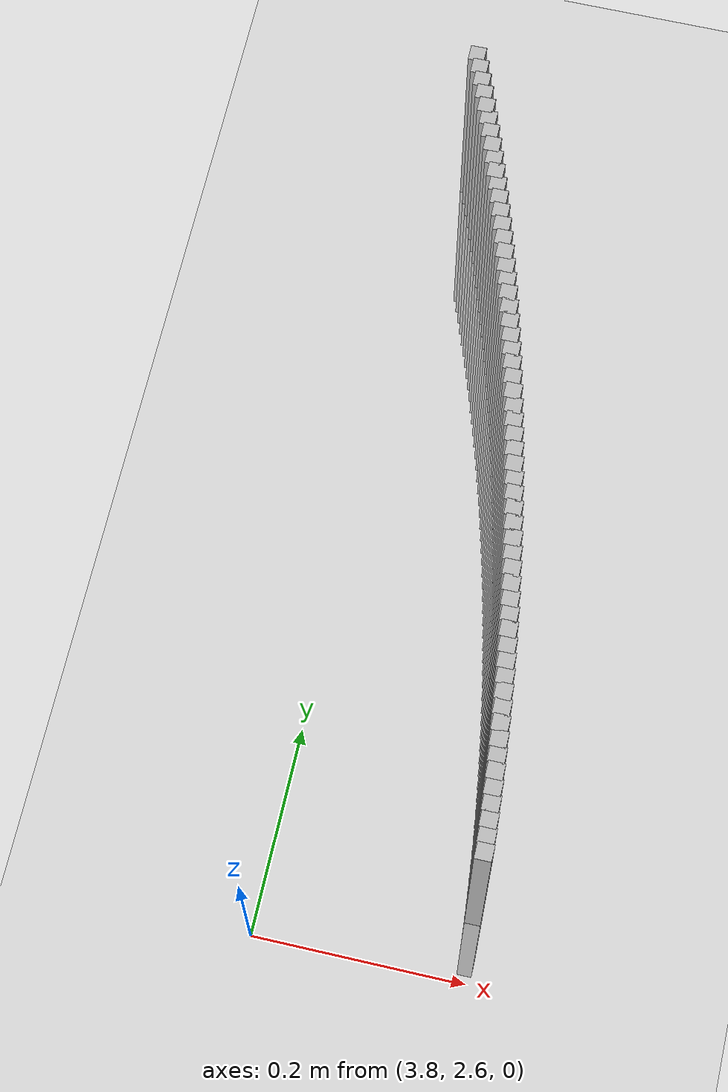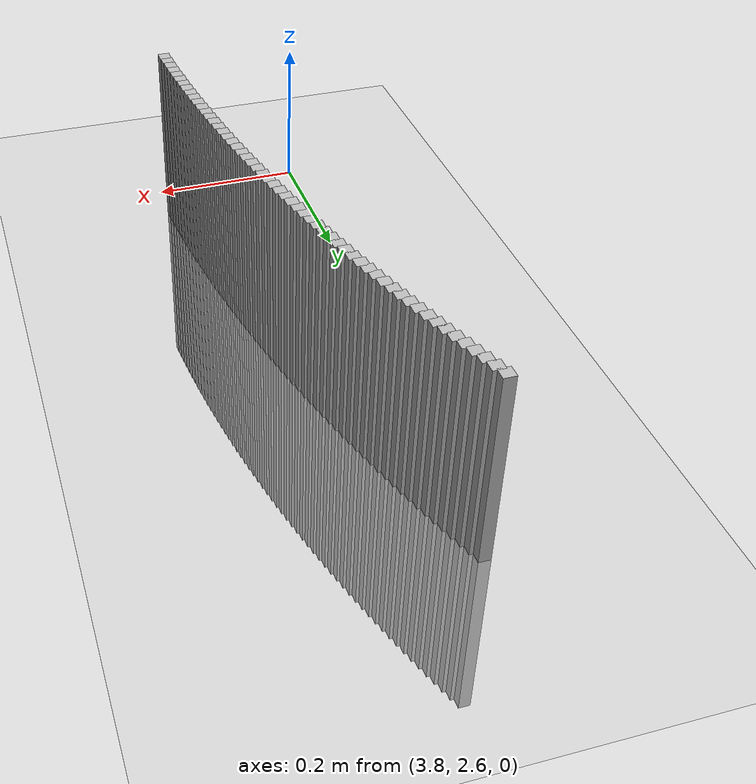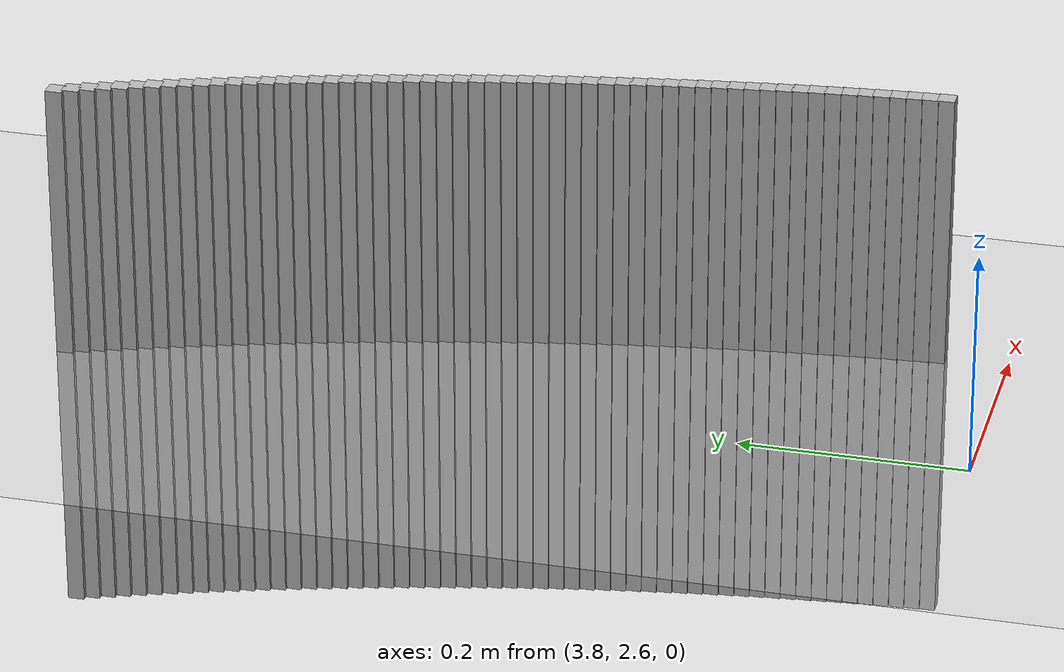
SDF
<sdf version="1.6">
 <world name="base">
  <model name="ground_plane">
   <static>1</static>
   <link name="link">
    <collision name="collision">
     <geometry><plane><normal>0 0 1</normal><size>100 100</size></plane></geometry>
     <surface>
      <contact><collide_bitmask>65535</collide_bitmask></contact>
      <friction><ode><mu>100</mu><mu2>50</mu2></ode></friction>
     </surface>
    </collision>
    <visual name="visual">
     <cast_shadows>0</cast_shadows>
     <geometry><plane><normal>0 0 1</normal><size>100 100</size></plane></geometry>
     <material>
      <script><uri>file://media/materials/scripts/gazebo.material</uri><name>Gazebo/Grey</name></script>
     </material>
    </visual>
   </link>
  </model>
  <model name="k404">
   <link name="224_link">
    <collision name="collision_224">
     <pose>3.8301 3.40589 0 0 -0 0</pose>
     <geometry><box><size>0.015 0.015 0.5</size></box></geometry>
    </collision>
    <visual name="visual_224">
     <pose>3.8301 3.40589 0 0 -0 0</pose>
     <geometry><box><size>0.015 0.015 0.5</size></box></geometry>
    </visual>
   </link>
   <link name="225_link">
    <collision name="collision_225">
     <pose>3.83509 3.39294 0 0 -0 0</pose>
     <geometry><box><size>0.015 0.015 0.5</size></box></geometry>
    </collision>
    <visual name="visual_225">
     <pose>3.83509 3.39294 0 0 -0 0</pose>
     <geometry><box><size>0.015 0.015 0.5</size></box></geometry>
    </visual>
   </link>
   <link name="226_link">
    <collision name="collision_226">
     <pose>3.84002 3.37995 0 0 -0 0</pose>
     <geometry><box><size>0.015 0.015 0.5</size></box></geometry>
    </collision>
    <visual name="visual_226">
     <pose>3.84002 3.37995 0 0 -0 0</pose>
     <geometry><box><size>0.015 0.015 0.5</size></box></geometry>
    </visual>
   </link>
   <link name="227_link">
    <collision name="collision_227">
     <pose>3.84487 3.36693 0 0 -0 0</pose>
     <geometry><box><size>0.015 0.015 0.5</size></box></geometry>
    </collision>
    <visual name="visual_227">
     <pose>3.84487 3.36693 0 0 -0 0</pose>
     <geometry><box><size>0.015 0.015 0.5</size></box></geometry>
    </visual>
   </link>
   <link name="228_link">
    <collision name="collision_228">
     <pose>3.84965 3.3539 0 0 -0 0</pose>
     <geometry><box><size>0.015 0.015 0.5</size></box></geometry>
    </collision>
    <visual name="visual_228">
     <pose>3.84965 3.3539 0 0 -0 0</pose>
     <geometry><box><size>0.015 0.015 0.5</size></box></geometry>
    </visual>
   </link>
   <link name="229_link">
    <collision name="collision_229">
     <pose>3.85436 3.34083 0 0 -0 0</pose>
     <geometry><box><size>0.015 0.015 0.5</size></box></geometry>
    </collision>
    <visual name="visual_229">
     <pose>3.85436 3.34083 0 0 -0 0</pose>
     <geometry><box><size>0.015 0.015 0.5</size></box></geometry>
    </visual>
   </link>
   <link name="230_link">
    <collision name="collision_230">
     <pose>3.85899 3.32774 0 0 -0 0</pose>
     <geometry><box><size>0.015 0.015 0.5</size></box></geometry>
    </collision>
    <visual name="visual_230">
     <pose>3.85899 3.32774 0 0 -0 0</pose>
     <geometry><box><size>0.015 0.015 0.5</size></box></geometry>
    </visual>
   </link>
   <link name="231_link">
    <collision name="collision_231">
     <pose>3.86356 3.31462 0 0 -0 0</pose>
     <geometry><box><size>0.015 0.015 0.5</size></box></geometry>
    </collision>
    <visual name="visual_231">
     <pose>3.86356 3.31462 0 0 -0 0</pose>
     <geometry><box><size>0.015 0.015 0.5</size></box></geometry>
    </visual>
   </link>
   <link name="232_link">
    <collision name="collision_232">
     <pose>3.86804 3.30147 0 0 -0 0</pose>
     <geometry><box><size>0.015 0.015 0.5</size></box></geometry>
    </collision>
    <visual name="visual_232">
     <pose>3.86804 3.30147 0 0 -0 0</pose>
     <geometry><box><size>0.015 0.015 0.5</size></box></geometry>
    </visual>
   </link>
   <link name="233_link">
    <collision name="collision_233">
     <pose>3.87246 3.28831 0 0 -0 0</pose>
     <geometry><box><size>0.015 0.015 0.5</size></box></geometry>
    </collision>
    <visual name="visual_233">
     <pose>3.87246 3.28831 0 0 -0 0</pose>
     <geometry><box><size>0.015 0.015 0.5</size></box></geometry>
    </visual>
   </link>
   <link name="234_link">
    <collision name="collision_234">
     <pose>3.8768 3.27511 0 0 -0 0</pose>
     <geometry><box><size>0.015 0.015 0.5</size></box></geometry>
    </collision>
    <visual name="visual_234">
     <pose>3.8768 3.27511 0 0 -0 0</pose>
     <geometry><box><size>0.015 0.015 0.5</size></box></geometry>
    </visual>
   </link>
   <link name="235_link">
    <collision name="collision_235">
     <pose>3.88107 3.2619 0 0 -0 0</pose>
     <geometry><box><size>0.015 0.015 0.5</size></box></geometry>
    </collision>
    <visual name="visual_235">
     <pose>3.88107 3.2619 0 0 -0 0</pose>
     <geometry><box><size>0.015 0.015 0.5</size></box></geometry>
    </visual>
   </link>
   <link name="236_link">
    <collision name="collision_236">
     <pose>3.88527 3.24866 0 0 -0 0</pose>
     <geometry><box><size>0.015 0.015 0.5</size></box></geometry>
    </collision>
    <visual name="visual_236">
     <pose>3.88527 3.24866 0 0 -0 0</pose>
     <geometry><box><size>0.015 0.015 0.5</size></box></geometry>
    </visual>
   </link>
   <link name="237_link">
    <collision name="collision_237">
     <pose>3.88939 3.23539 0 0 -0 0</pose>
     <geometry><box><size>0.015 0.015 0.5</size></box></geometry>
    </collision>
    <visual name="visual_237">
     <pose>3.88939 3.23539 0 0 -0 0</pose>
     <geometry><box><size>0.015 0.015 0.5</size></box></geometry>
    </visual>
   </link>
   <link name="238_link">
    <collision name="collision_238">
     <pose>3.89344 3.22211 0 0 -0 0</pose>
     <geometry><box><size>0.015 0.015 0.5</size></box></geometry>
    </collision>
    <visual name="visual_238">
     <pose>3.89344 3.22211 0 0 -0 0</pose>
     <geometry><box><size>0.015 0.015 0.5</size></box></geometry>
    </visual>
   </link>
   <link name="239_link">
    <collision name="collision_239">
     <pose>3.89742 3.2088 0 0 -0 0</pose>
     <geometry><box><size>0.015 0.015 0.5</size></box></geometry>
    </collision>
    <visual name="visual_239">
     <pose>3.89742 3.2088 0 0 -0 0</pose>
     <geometry><box><size>0.015 0.015 0.5</size></box></geometry>
    </visual>
   </link>
   <link name="240_link">
    <collision name="collision_240">
     <pose>3.90132 3.19547 0 0 -0 0</pose>
     <geometry><box><size>0.015 0.015 0.5</size></box></geometry>
    </collision>
    <visual name="visual_240">
     <pose>3.90132 3.19547 0 0 -0 0</pose>
     <geometry><box><size>0.015 0.015 0.5</size></box></geometry>
    </visual>
   </link>
   <link name="241_link">
    <collision name="collision_241">
     <pose>3.90514 3.18212 0 0 -0 0</pose>
     <geometry><box><size>0.015 0.015 0.5</size></box></geometry>
    </collision>
    <visual name="visual_241">
     <pose>3.90514 3.18212 0 0 -0 0</pose>
     <geometry><box><size>0.015 0.015 0.5</size></box></geometry>
    </visual>
   </link>
   <link name="242_link">
    <collision name="collision_242">
     <pose>3.90889 3.16875 0 0 -0 0</pose>
     <geometry><box><size>0.015 0.015 0.5</size></box></geometry>
    </collision>
    <visual name="visual_242">
     <pose>3.90889 3.16875 0 0 -0 0</pose>
     <geometry><box><size>0.015 0.015 0.5</size></box></geometry>
    </visual>
   </link>
   <link name="243_link">
    <collision name="collision_243">
     <pose>3.91257 3.15535 0 0 -0 0</pose>
     <geometry><box><size>0.015 0.015 0.5</size></box></geometry>
    </collision>
    <visual name="visual_243">
     <pose>3.91257 3.15535 0 0 -0 0</pose>
     <geometry><box><size>0.015 0.015 0.5</size></box></geometry>
    </visual>
   </link>
   <link name="244_link">
    <collision name="collision_244">
     <pose>3.91618 3.14194 0 0 -0 0</pose>
     <geometry><box><size>0.015 0.015 0.5</size></box></geometry>
    </collision>
    <visual name="visual_244">
     <pose>3.91618 3.14194 0 0 -0 0</pose>
     <geometry><box><size>0.015 0.015 0.5</size></box></geometry>
    </visual>
   </link>
   <link name="245_link">
    <collision name="collision_245">
     <pose>3.91971 3.12851 0 0 -0 0</pose>
     <geometry><box><size>0.015 0.015 0.5</size></box></geometry>
    </collision>
    <visual name="visual_245">
     <pose>3.91971 3.12851 0 0 -0 0</pose>
     <geometry><box><size>0.015 0.015 0.5</size></box></geometry>
    </visual>
   </link>
   <link name="246_link">
    <collision name="collision_246">
     <pose>3.92316 3.11505 0 0 -0 0</pose>
     <geometry><box><size>0.015 0.015 0.5</size></box></geometry>
    </collision>
    <visual name="visual_246">
     <pose>3.92316 3.11505 0 0 -0 0</pose>
     <geometry><box><size>0.015 0.015 0.5</size></box></geometry>
    </visual>
   </link>
   <link name="247_link">
    <collision name="collision_247">
     <pose>3.92654 3.10158 0 0 -0 0</pose>
     <geometry><box><size>0.015 0.015 0.5</size></box></geometry>
    </collision>
    <visual name="visual_247">
     <pose>3.92654 3.10158 0 0 -0 0</pose>
     <geometry><box><size>0.015 0.015 0.5</size></box></geometry>
    </visual>
   </link>
   <link name="248_link">
    <collision name="collision_248">
     <pose>3.92984 3.08809 0 0 -0 0</pose>
     <geometry><box><size>0.015 0.015 0.5</size></box></geometry>
    </collision>
    <visual name="visual_248">
     <pose>3.92984 3.08809 0 0 -0 0</pose>
     <geometry><box><size>0.015 0.015 0.5</size></box></geometry>
    </visual>
   </link>
   <link name="249_link">
    <collision name="collision_249">
     <pose>3.93307 3.07459 0 0 -0 0</pose>
     <geometry><box><size>0.015 0.015 0.5</size></box></geometry>
    </collision>
    <visual name="visual_249">
     <pose>3.93307 3.07459 0 0 -0 0</pose>
     <geometry><box><size>0.015 0.015 0.5</size></box></geometry>
    </visual>
   </link>
   <link name="250_link">
    <collision name="collision_250">
     <pose>3.93623 3.06106 0 0 -0 0</pose>
     <geometry><box><size>0.015 0.015 0.5</size></box></geometry>
    </collision>
    <visual name="visual_250">
     <pose>3.93623 3.06106 0 0 -0 0</pose>
     <geometry><box><size>0.015 0.015 0.5</size></box></geometry>
    </visual>
   </link>
   <link name="251_link">
    <collision name="collision_251">
     <pose>3.93931 3.04752 0 0 -0 0</pose>
     <geometry><box><size>0.015 0.015 0.5</size></box></geometry>
    </collision>
    <visual name="visual_251">
     <pose>3.93931 3.04752 0 0 -0 0</pose>
     <geometry><box><size>0.015 0.015 0.5</size></box></geometry>
    </visual>
   </link>
   <link name="252_link">
    <collision name="collision_252">
     <pose>3.94231 3.03396 0 0 -0 0</pose>
     <geometry><box><size>0.015 0.015 0.5</size></box></geometry>
    </collision>
    <visual name="visual_252">
     <pose>3.94231 3.03396 0 0 -0 0</pose>
     <geometry><box><size>0.015 0.015 0.5</size></box></geometry>
    </visual>
   </link>
   <link name="253_link">
    <collision name="collision_253">
     <pose>3.94524 3.02038 0 0 -0 0</pose>
     <geometry><box><size>0.015 0.015 0.5</size></box></geometry>
    </collision>
    <visual name="visual_253">
     <pose>3.94524 3.02038 0 0 -0 0</pose>
     <geometry><box><size>0.015 0.015 0.5</size></box></geometry>
    </visual>
   </link>
   <link name="254_link">
    <collision name="collision_254">
     <pose>3.94809 3.00679 0 0 -0 0</pose>
     <geometry><box><size>0.015 0.015 0.5</size></box></geometry>
    </collision>
    <visual name="visual_254">
     <pose>3.94809 3.00679 0 0 -0 0</pose>
     <geometry><box><size>0.015 0.015 0.5</size></box></geometry>
    </visual>
   </link>
   <link name="255_link">
    <collision name="collision_255">
     <pose>3.95087 2.99318 0 0 -0 0</pose>
     <geometry><box><size>0.015 0.015 0.5</size></box></geometry>
    </collision>
    <visual name="visual_255">
     <pose>3.95087 2.99318 0 0 -0 0</pose>
     <geometry><box><size>0.015 0.015 0.5</size></box></geometry>
    </visual>
   </link>
   <link name="256_link">
    <collision name="collision_256">
     <pose>3.95357 2.97956 0 0 -0 0</pose>
     <geometry><box><size>0.015 0.015 0.5</size></box></geometry>
    </collision>
    <visual name="visual_256">
     <pose>3.95357 2.97956 0 0 -0 0</pose>
     <geometry><box><size>0.015 0.015 0.5</size></box></geometry>
    </visual>
   </link>
   <link name="257_link">
    <collision name="collision_257">
     <pose>3.9562 2.96592 0 0 -0 0</pose>
     <geometry><box><size>0.015 0.015 0.5</size></box></geometry>
    </collision>
    <visual name="visual_257">
     <pose>3.9562 2.96592 0 0 -0 0</pose>
     <geometry><box><size>0.015 0.015 0.5</size></box></geometry>
    </visual>
   </link>
   <link name="258_link">
    <collision name="collision_258">
     <pose>3.95875 2.95227 0 0 -0 0</pose>
     <geometry><box><size>0.015 0.015 0.5</size></box></geometry>
    </collision>
    <visual name="visual_258">
     <pose>3.95875 2.95227 0 0 -0 0</pose>
     <geometry><box><size>0.015 0.015 0.5</size></box></geometry>
    </visual>
   </link>
   <link name="259_link">
    <collision name="collision_259">
     <pose>3.96123 2.9386 0 0 -0 0</pose>
     <geometry><box><size>0.015 0.015 0.5</size></box></geometry>
    </collision>
    <visual name="visual_259">
     <pose>3.96123 2.9386 0 0 -0 0</pose>
     <geometry><box><size>0.015 0.015 0.5</size></box></geometry>
    </visual>
   </link>
   <link name="260_link">
    <collision name="collision_260">
     <pose>3.96362 2.92492 0 0 -0 0</pose>
     <geometry><box><size>0.015 0.015 0.5</size></box></geometry>
    </collision>
    <visual name="visual_260">
     <pose>3.96362 2.92492 0 0 -0 0</pose>
     <geometry><box><size>0.015 0.015 0.5</size></box></geometry>
    </visual>
   </link>
   <link name="261_link">
    <collision name="collision_261">
     <pose>3.96595 2.91122 0 0 -0 0</pose>
     <geometry><box><size>0.015 0.015 0.5</size></box></geometry>
    </collision>
    <visual name="visual_261">
     <pose>3.96595 2.91122 0 0 -0 0</pose>
     <geometry><box><size>0.015 0.015 0.5</size></box></geometry>
    </visual>
   </link>
   <link name="262_link">
    <collision name="collision_262">
     <pose>3.96819 2.89752 0 0 -0 0</pose>
     <geometry><box><size>0.015 0.015 0.5</size></box></geometry>
    </collision>
    <visual name="visual_262">
     <pose>3.96819 2.89752 0 0 -0 0</pose>
     <geometry><box><size>0.015 0.015 0.5</size></box></geometry>
    </visual>
   </link>
   <link name="263_link">
    <collision name="collision_263">
     <pose>3.97036 2.8838 0 0 -0 0</pose>
     <geometry><box><size>0.015 0.015 0.5</size></box></geometry>
    </collision>
    <visual name="visual_263">
     <pose>3.97036 2.8838 0 0 -0 0</pose>
     <geometry><box><size>0.015 0.015 0.5</size></box></geometry>
    </visual>
   </link>
   <link name="264_link">
    <collision name="collision_264">
     <pose>3.97246 2.87007 0 0 -0 0</pose>
     <geometry><box><size>0.015 0.015 0.5</size></box></geometry>
    </collision>
    <visual name="visual_264">
     <pose>3.97246 2.87007 0 0 -0 0</pose>
     <geometry><box><size>0.015 0.015 0.5</size></box></geometry>
    </visual>
   </link>
   <link name="265_link">
    <collision name="collision_265">
     <pose>3.97448 2.85633 0 0 -0 0</pose>
     <geometry><box><size>0.015 0.015 0.5</size></box></geometry>
    </collision>
    <visual name="visual_265">
     <pose>3.97448 2.85633 0 0 -0 0</pose>
     <geometry><box><size>0.015 0.015 0.5</size></box></geometry>
    </visual>
   </link>
   <link name="266_link">
    <collision name="collision_266">
     <pose>3.97642 2.84258 0 0 -0 0</pose>
     <geometry><box><size>0.015 0.015 0.5</size></box></geometry>
    </collision>
    <visual name="visual_266">
     <pose>3.97642 2.84258 0 0 -0 0</pose>
     <geometry><box><size>0.015 0.015 0.5</size></box></geometry>
    </visual>
   </link>
   <link name="267_link">
    <collision name="collision_267">
     <pose>3.97828 2.82881 0 0 -0 0</pose>
     <geometry><box><size>0.015 0.015 0.5</size></box></geometry>
    </collision>
    <visual name="visual_267">
     <pose>3.97828 2.82881 0 0 -0 0</pose>
     <geometry><box><size>0.015 0.015 0.5</size></box></geometry>
    </visual>
   </link>
   <link name="268_link">
    <collision name="collision_268">
     <pose>3.98007 2.81504 0 0 -0 0</pose>
     <geometry><box><size>0.015 0.015 0.5</size></box></geometry>
    </collision>
    <visual name="visual_268">
     <pose>3.98007 2.81504 0 0 -0 0</pose>
     <geometry><box><size>0.015 0.015 0.5</size></box></geometry>
    </visual>
   </link>
   <link name="269_link">
    <collision name="collision_269">
     <pose>3.98178 2.80126 0 0 -0 0</pose>
     <geometry><box><size>0.015 0.015 0.5</size></box></geometry>
    </collision>
    <visual name="visual_269">
     <pose>3.98178 2.80126 0 0 -0 0</pose>
     <geometry><box><size>0.015 0.015 0.5</size></box></geometry>
    </visual>
   </link>
   <link name="270_link">
    <collision name="collision_270">
     <pose>3.98342 2.78747 0 0 -0 0</pose>
     <geometry><box><size>0.015 0.015 0.5</size></box></geometry>
    </collision>
    <visual name="visual_270">
     <pose>3.98342 2.78747 0 0 -0 0</pose>
     <geometry><box><size>0.015 0.015 0.5</size></box></geometry>
    </visual>
   </link>
   <link name="271_link">
    <collision name="collision_271">
     <pose>3.98498 2.77366 0 0 -0 0</pose>
     <geometry><box><size>0.015 0.015 0.5</size></box></geometry>
    </collision>
    <visual name="visual_271">
     <pose>3.98498 2.77366 0 0 -0 0</pose>
     <geometry><box><size>0.015 0.015 0.5</size></box></geometry>
    </visual>
   </link>
   <link name="272_link">
    <collision name="collision_272">
     <pose>3.98646 2.75985 0 0 -0 0</pose>
     <geometry><box><size>0.015 0.015 0.5</size></box></geometry>
    </collision>
    <visual name="visual_272">
     <pose>3.98646 2.75985 0 0 -0 0</pose>
     <geometry><box><size>0.015 0.015 0.5</size></box></geometry>
    </visual>
   </link>
   <link name="273_link">
    <collision name="collision_273">
     <pose>3.98786 2.74604 0 0 -0 0</pose>
     <geometry><box><size>0.015 0.015 0.5</size></box></geometry>
    </collision>
    <visual name="visual_273">
     <pose>3.98786 2.74604 0 0 -0 0</pose>
     <geometry><box><size>0.015 0.015 0.5</size></box></geometry>
    </visual>
   </link>
   <link name="274_link">
    <collision name="collision_274">
     <pose>3.98919 2.73221 0 0 -0 0</pose>
     <geometry><box><size>0.015 0.015 0.5</size></box></geometry>
    </collision>
    <visual name="visual_274">
     <pose>3.98919 2.73221 0 0 -0 0</pose>
     <geometry><box><size>0.015 0.015 0.5</size></box></geometry>
    </visual>
   </link>
   <link name="275_link">
    <collision name="collision_275">
     <pose>3.99044 2.71838 0 0 -0 0</pose>
     <geometry><box><size>0.015 0.015 0.5</size></box></geometry>
    </collision>
    <visual name="visual_275">
     <pose>3.99044 2.71838 0 0 -0 0</pose>
     <geometry><box><size>0.015 0.015 0.5</size></box></geometry>
    </visual>
   </link>
   <link name="276_link">
    <collision name="collision_276">
     <pose>3.99162 2.70454 0 0 -0 0</pose>
     <geometry><box><size>0.015 0.015 0.5</size></box></geometry>
    </collision>
    <visual name="visual_276">
     <pose>3.99162 2.70454 0 0 -0 0</pose>
     <geometry><box><size>0.015 0.015 0.5</size></box></geometry>
    </visual>
   </link>
   <link name="277_link">
    <collision name="collision_277">
     <pose>3.99272 2.69069 0 0 -0 0</pose>
     <geometry><box><size>0.015 0.015 0.5</size></box></geometry>
    </collision>
    <visual name="visual_277">
     <pose>3.99272 2.69069 0 0 -0 0</pose>
     <geometry><box><size>0.015 0.015 0.5</size></box></geometry>
    </visual>
   </link>
   <link name="278_link">
    <collision name="collision_278">
     <pose>3.99374 2.67684 0 0 -0 0</pose>
     <geometry><box><size>0.015 0.015 0.5</size></box></geometry>
    </collision>
    <visual name="visual_278">
     <pose>3.99374 2.67684 0 0 -0 0</pose>
     <geometry><box><size>0.015 0.015 0.5</size></box></geometry>
    </visual>
   </link>
   <link name="279_link">
    <collision name="collision_279">
     <pose>3.99468 2.66299 0 0 -0 0</pose>
     <geometry><box><size>0.015 0.015 0.5</size></box></geometry>
    </collision>
    <visual name="visual_279">
     <pose>3.99468 2.66299 0 0 -0 0</pose>
     <geometry><box><size>0.015 0.015 0.5</size></box></geometry>
    </visual>
   </link>
   <static>1</static>
  </model>
 </world>
</sdf>
